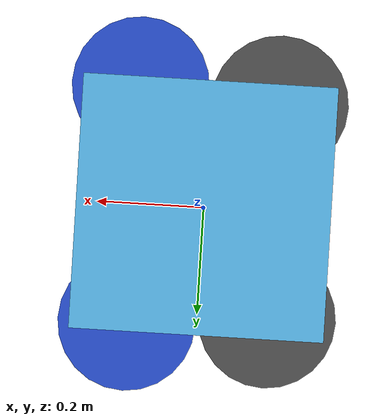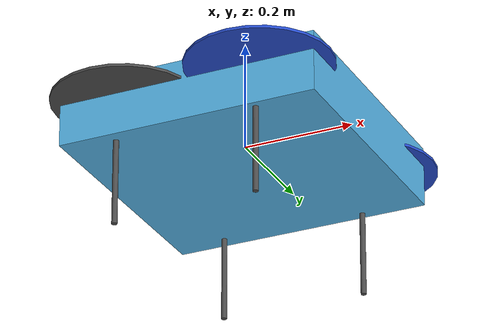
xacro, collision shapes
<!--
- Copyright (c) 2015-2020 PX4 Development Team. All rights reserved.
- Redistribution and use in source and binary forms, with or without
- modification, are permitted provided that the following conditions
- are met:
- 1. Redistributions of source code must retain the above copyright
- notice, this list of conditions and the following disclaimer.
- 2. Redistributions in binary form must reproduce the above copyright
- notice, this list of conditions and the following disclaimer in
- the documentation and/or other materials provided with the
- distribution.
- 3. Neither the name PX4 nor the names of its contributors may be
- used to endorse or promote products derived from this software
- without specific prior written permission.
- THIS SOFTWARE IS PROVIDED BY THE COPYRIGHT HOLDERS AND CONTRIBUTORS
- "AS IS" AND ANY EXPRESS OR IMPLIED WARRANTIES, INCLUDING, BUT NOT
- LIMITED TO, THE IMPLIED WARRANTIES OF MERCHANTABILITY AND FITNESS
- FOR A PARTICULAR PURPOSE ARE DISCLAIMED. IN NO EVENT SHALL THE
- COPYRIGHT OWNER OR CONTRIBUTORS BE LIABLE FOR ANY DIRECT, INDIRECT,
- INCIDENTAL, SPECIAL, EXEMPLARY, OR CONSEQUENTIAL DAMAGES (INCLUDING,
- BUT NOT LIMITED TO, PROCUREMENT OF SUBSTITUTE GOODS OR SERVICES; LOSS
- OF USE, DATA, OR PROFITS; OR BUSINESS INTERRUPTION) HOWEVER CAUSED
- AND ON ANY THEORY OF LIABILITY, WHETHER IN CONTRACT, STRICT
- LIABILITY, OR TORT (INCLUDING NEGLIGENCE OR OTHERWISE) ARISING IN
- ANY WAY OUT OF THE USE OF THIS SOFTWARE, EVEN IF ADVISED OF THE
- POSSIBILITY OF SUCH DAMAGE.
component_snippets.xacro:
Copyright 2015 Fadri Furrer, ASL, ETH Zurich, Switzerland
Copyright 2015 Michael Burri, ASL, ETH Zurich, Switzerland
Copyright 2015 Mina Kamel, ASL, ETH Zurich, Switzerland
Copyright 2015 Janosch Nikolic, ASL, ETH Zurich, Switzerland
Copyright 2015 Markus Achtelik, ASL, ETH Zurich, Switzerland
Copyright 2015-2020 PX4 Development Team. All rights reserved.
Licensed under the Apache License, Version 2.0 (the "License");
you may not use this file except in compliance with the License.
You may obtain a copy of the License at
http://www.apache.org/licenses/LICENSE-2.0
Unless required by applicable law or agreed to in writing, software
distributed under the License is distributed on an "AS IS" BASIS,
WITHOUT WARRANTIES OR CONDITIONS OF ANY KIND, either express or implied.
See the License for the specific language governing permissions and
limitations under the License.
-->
<?xml version="1.0"?>

<robot name="iris" xmlns:xacro="http://ros.org/wiki/xacro">
  <!-- Properties that can be assigned at build time as arguments.
  Is there a reason not to make all properties arguments?
  -->
  <xacro:arg name='name' default='iris' />
  <xacro:arg name='mavlink_addr' default='INADDR_ANY' />
  <xacro:arg name='mavlink_udp_port' default='14560' />
  <xacro:arg name='mavlink_tcp_port' default='4560' />
  <xacro:arg name='serial_enabled' default='false' />
  <xacro:arg name='serial_device' default='/dev/ttyACM0' />
  <xacro:arg name='baudrate' default='921600' />
  <xacro:arg name='qgc_addr' default='INADDR_ANY' />
  <xacro:arg name='qgc_udp_port' default='14550' />
  <xacro:arg name='sdk_addr' default='INADDR_ANY' />
  <xacro:arg name='sdk_udp_port' default='14540' />
  <xacro:arg name='hil_mode' default='false' />
  <xacro:arg name='hil_state_level' default='false' />
  <xacro:arg name='send_vision_estimation' default='false' />
  <xacro:arg name='send_odometry' default='false' />
  <xacro:arg name='enable_lockstep' default='true' />
  <xacro:arg name='use_tcp' default='true' />
  <xacro:arg name='vehicle_is_tailsitter' default='false' />
  <xacro:arg name='visual_material' default='DarkGrey' />
  <xacro:arg name='enable_mavlink_interface' default='true' />
  <xacro:arg name='enable_wind' default='false' />
  <!-- The following causes segfault with multiple vehicles if defaults to true!!! -->
  <xacro:arg name='enable_ground_truth' default='false' />
  <xacro:arg name='enable_logging' default='false' />
  <xacro:arg name='log_file' default='iris' />

  <!-- macros for gazebo plugins, sensors -->
  <xacro:include filename="$(find mobot_urdf)/urdf/component_snippets.xacro" />

  <!-- Instantiate iris "mechanics" -->
  <xacro:include filename="$(find mobot_urdf)/urdf/iris.xacro" />

  <xacro:if value="$(arg enable_wind)">
    <xacro:wind_plugin_macro
        namespace="${namespace}"
        wind_direction="0 0 1"
        wind_force_mean="0.7"
        xyz_offset="1 0 0"
        wind_gust_direction="0 0 0"
        wind_gust_duration="0"
        wind_gust_start="0"
        wind_gust_force_mean="0"
        />
  </xacro:if>

  <!-- Mount a GPS module. -->
  <xacro:gps_macro
    gps_name="gps0"
    pos_x="0.0"
    pos_y="0.0"
    pos_z="0.0"
    gps_noise="true"
    gps_xy_random_walk="2.0"
    gps_z_random_walk="4.0"
    gps_xy_noise_density="2.0e-4"
    gps_z_noise_density="4.0e-4"
    gps_vxy_noise_density="0.2"
    gps_vz_noise_density="0.4"
    namespace=""
    parent_link="base_link">
  </xacro:gps_macro>

  <!-- Instantiate groundtruth plugin. -->
  <xacro:groundtruth_plugin_macro
    namespace="${namespace}"
    >
  </xacro:groundtruth_plugin_macro>

  <!-- Instantiate magnetometer plugin. -->
  <xacro:magnetometer_plugin_macro
    namespace="${namespace}"
    pub_rate="100"
    noise_density="0.0004"
    random_walk="0.0000064"
    bias_correlation_time="600"
    mag_topic="/mag"
    >
  </xacro:magnetometer_plugin_macro>

  <!-- Instantiate barometer plugin. -->
  <xacro:barometer_plugin_macro
    namespace="${namespace}"
    pub_rate="50"
    baro_topic="/baro"
    baro_drift_pa_per_sec="0"
    >
  </xacro:barometer_plugin_macro>

  <xacro:if value="$(arg enable_mavlink_interface)">
  <!-- Instantiate mavlink telemetry interface. -->
  <xacro:mavlink_interface_macro
    namespace="${namespace}"
    imu_sub_topic="/imu"
    mag_sub_topic="/mag"
    baro_sub_topic="/baro"
    mavlink_addr="$(arg mavlink_addr)"
    mavlink_udp_port="$(arg mavlink_udp_port)"
    mavlink_tcp_port="$(arg mavlink_tcp_port)"
    serial_enabled="$(arg serial_enabled)"
    serial_device="$(arg serial_device)"
    baudrate="$(arg baudrate)"
    qgc_addr="$(arg qgc_addr)"
    qgc_udp_port="$(arg qgc_udp_port)"
    sdk_addr="$(arg sdk_addr)"
    sdk_udp_port="$(arg sdk_udp_port)"
    hil_mode="$(arg hil_mode)"
    hil_state_level="$(arg hil_state_level)"
    vehicle_is_tailsitter="$(arg vehicle_is_tailsitter)"
    send_vision_estimation="$(arg send_vision_estimation)"
    send_odometry="$(arg send_odometry)"
    enable_lockstep="$(arg enable_lockstep)"
    use_tcp="$(arg use_tcp)"
    >
  </xacro:mavlink_interface_macro>
  </xacro:if>

  <!-- Mount an ADIS16448 IMU. -->
  <xacro:imu_plugin_macro
    namespace="${namespace}"
    imu_suffix=""
    parent_link="base_link"
    imu_topic="/imu"
    mass_imu_sensor="0.015"
    gyroscope_noise_density="0.00018665"
    gyroscopoe_random_walk="0.000038785"
    gyroscope_bias_correlation_time="1000.0"
    gyroscope_turn_on_bias_sigma="0.0087"
    accelerometer_noise_density="0.00186"
    accelerometer_random_walk="0.006"
    accelerometer_bias_correlation_time="300.0"
    accelerometer_turn_on_bias_sigma="0.1960"
  >
    <inertia ixx="0.00001" ixy="0.0" ixz="0.0" iyy="0.00001" iyz="0.0" izz="0.00001" />
    <origin xyz="0 0 0" rpy="0 0 0" />
  </xacro:imu_plugin_macro>

  <xacro:if value="$(arg enable_ground_truth)">
    <!-- Mount an IMU providing ground truth. -->
    <xacro:imu_plugin_macro
      namespace="${namespace}"
      imu_suffix="gt"
      parent_link="base_link"
      imu_topic="ground_truth/imu"
      mass_imu_sensor="0.00001"
      gyroscope_noise_density="0.0"
      gyroscopoe_random_walk="0.0"
      gyroscope_bias_correlation_time="1000.0"
      gyroscope_turn_on_bias_sigma="0.0"
      accelerometer_noise_density="0.0"
      accelerometer_random_walk="0.0"
      accelerometer_bias_correlation_time="300.0"
      accelerometer_turn_on_bias_sigma="0.0"
    >
      <inertia ixx="0.00001" ixy="0.0" ixz="0.0" iyy="0.00001" iyz="0.0" izz="0.00001" />
      <origin xyz="0 0 0" rpy="0 0 0" />
    </xacro:imu_plugin_macro>

    <!-- Mount a generic odometry sensor providing ground truth. -->
    <xacro:odometry_plugin_macro
      namespace="${namespace}/ground_truth"
      odometry_sensor_suffix="gt"
      parent_link="base_link"
      pose_topic="pose"
      pose_with_covariance_topic="pose_with_covariance"
      position_topic="position"
      transform_topic="transform"
      odometry_topic="odometry"
      parent_frame_id="world"
      mass_odometry_sensor="0.00001"
      measurement_divisor="1"
      measurement_delay="0"
      unknown_delay="0.0"
      noise_normal_position="0 0 0"
      noise_normal_quaternion="0 0 0"
      noise_normal_linear_velocity="0 0 0"
      noise_normal_angular_velocity="0 0 0"
      noise_uniform_position="0 0 0"
      noise_uniform_quaternion="0 0 0"
      noise_uniform_linear_velocity="0 0 0"
      noise_uniform_angular_velocity="0 0 0"
      enable_odometry_map="false"
      odometry_map=""
      image_scale=""
    >
      <inertia ixx="0.00001" ixy="0.0" ixz="0.0" iyy="0.00001" iyz="0.0" izz="0.00001" /> <!-- [kg.m^2] [kg.m^2] [kg.m^2] [kg.m^2] [kg.m^2] [kg.m^2] -->
      <origin xyz="0.0 0.0 0.0" rpy="0.0 0.0 0.0" />
    </xacro:odometry_plugin_macro>
  </xacro:if>

  <xacro:if value="$(arg enable_logging)">
    <!-- Instantiate a logger -->
    <xacro:bag_plugin_macro
      namespace="${namespace}"
      bag_file="$(arg log_file)"
      rotor_velocity_slowdown_sim="${rotor_velocity_slowdown_sim}"
    >
    </xacro:bag_plugin_macro>
  </xacro:if>

</robot>

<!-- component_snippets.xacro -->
<robot xmlns:xacro="http://ros.org/wiki/xacro">
  <!-- Macro to a add a GPS sensor. -->
  <xacro:macro name="gps_macro"
    params="gps_name pos_x pos_y pos_z namespace gps_noise gps_xy_random_walk
            gps_z_random_walk gps_xy_noise_density gps_z_noise_density
            gps_vxy_noise_density gps_vz_noise_density parent_link">
    <gazebo>
      <model name="${gps_name}">
        <link name="link">
          <pose>${pos_x} ${pos_y} ${pos_z} 0 0 0</pose>
          <inertial>
            <pose>0 0 0 0 0 0</pose>
            <mass>0.01</mass>
            <inertia>
              <ixx>2.1733e-6</ixx>
              <ixy>0</ixy>
              <ixz>0</ixz>
              <iyy>2.1733e-6</iyy>
              <iyz>0</iyz>
              <izz>1.8e-7</izz>
            </inertia>
          </inertial>
          <visual name="visual">
            <geometry>
              <cylinder>
                <radius>0.01</radius>
                <length>0.002</length>
              </cylinder>
            </geometry>
            <material>
              <script>
                <name>Gazebo/Black</name>
              </script>
            </material>
          </visual>
          <sensor name="gps" type="gps">
            <pose>0 0 0 0 0 0</pose>
            <plugin name="gps_plugin" filename="libgazebo_gps_plugin.so">
              <robotNamespace>${namespace}</robotNamespace>
              <gpsNoise>${gps_noise}</gpsNoise>
              <gpsXYRandomWalk>${gps_xy_random_walk}</gpsXYRandomWalk>
              <gpsZRandomWalk>${gps_z_random_walk}</gpsZRandomWalk>
              <gpsXYNoiseDensity>${gps_xy_noise_density}</gpsXYNoiseDensity>
              <gpsZNoiseDensity>${gps_z_noise_density}</gpsZNoiseDensity>
              <gpsVXYNoiseDensity>${gps_vxy_noise_density}</gpsVXYNoiseDensity>
              <gpsVZNoiseDensity>${gps_vz_noise_density}</gpsVZNoiseDensity>
            </plugin>
          </sensor>
        </link>
      </model>
      <joint name="${gps_name}_joint" type="fixed">
        <parent>${parent_link}</parent>
        <child>${gps_name}::link</child>
      </joint>
    </gazebo>
  </xacro:macro>

  <!-- Macro to add logging to a bag file. -->
  <xacro:macro name="bag_plugin_macro"
    params="namespace bag_file rotor_velocity_slowdown_sim">
    <gazebo>
      <plugin filename="librotors_gazebo_bag_plugin.so" name="rosbag">
        <robotNamespace>${namespace}</robotNamespace>
        <bagFileName>${bag_file}</bagFileName>
        <linkName>base_link</linkName>
        <frameId>base_link</frameId>
        <commandAttitudeThrustSubTopic>command/attitude</commandAttitudeThrustSubTopic>
        <commandAttitudeThrustPubTopic>command/attitude</commandAttitudeThrustPubTopic>
        <rotorVelocitySlowdownSim>${rotor_velocity_slowdown_sim}</rotorVelocitySlowdownSim>
      </plugin>
    </gazebo>
  </xacro:macro>

  <!-- Macro to add a camera. -->
  <xacro:macro name="camera_macro"
    params="namespace parent_link camera_suffix frame_rate
      horizontal_fov image_width image_height image_format min_distance
      max_distance noise_mean noise_stddev enable_visual *cylinder *origin">
    <link name="${namespace}/camera_${camera_suffix}_link">
      <collision>
        <origin xyz="0 0 0" rpy="0 0 0" />
        <geometry>
          <xacro:insert_block name="cylinder" />
        </geometry>
      </collision>
      <xacro:if value="${enable_visual}">
        <visual>
          <origin xyz="0 0 0" rpy="0 1.57079632679 0" />
          <geometry>
            <xacro:insert_block name="cylinder" />
          </geometry>
          <material name="red" />
        </visual>
      </xacro:if>
      <inertial>
        <mass value="1e-5" />
        <origin xyz="0 0 0" rpy="0 0 0" />
        <inertia ixx="1e-6" ixy="0" ixz="0" iyy="1e-6" iyz="0" izz="1e-6" />
      </inertial>
    </link>
    <joint name="${namespace}/camera_${camera_suffix}_joint" type="fixed">
      <xacro:insert_block name="origin" />
      <parent link="${parent_link}" />
      <child link="${namespace}/camera_${camera_suffix}_link" />
    </joint>
    <gazebo reference="${namespace}/camera_${camera_suffix}_link">
      <sensor type="camera" name="${namespace}_camera_${camera_suffix}">
        <update_rate>${frame_rate}</update_rate>
        <camera name="head">
          <horizontal_fov>${horizontal_fov}</horizontal_fov>
          <image>
            <width>${image_width}</width>
            <height>${image_height}</height>
            <format>${image_format}</format>
          </image>
          <clip>
            <near>${min_distance}</near>
            <far>${max_distance}</far>
          </clip>
          <noise>
            <type>gaussian</type>
            <!-- Noise is sampled independently per pixel on each frame.
                 That pixel's noise value is added to each of its color
                 channels, which at that point lie in the range [0,1]. -->
            <mean>${noise_mean}</mean>
            <stddev>${noise_stddev}</stddev>
          </noise>
        </camera>
        <plugin name="${namespace}_camera_${camera_suffix}_controller" filename="libgazebo_ros_camera.so">
          <robotNamespace>${namespace}</robotNamespace>
          <alwaysOn>true</alwaysOn>
          <updateRate>${frame_rate}</updateRate>
          <cameraName>camera_${camera_suffix}</cameraName>
          <imageTopicName>image_raw</imageTopicName>
          <cameraInfoTopicName>camera_info</cameraInfoTopicName>
          <frameName>camera_${camera_suffix}_link</frameName>
          <hackBaseline>0.0</hackBaseline>
          <distortionK1>0.0</distortionK1>
          <distortionK2>0.0</distortionK2>
          <distortionK3>0.0</distortionK3>
          <distortionT1>0.0</distortionT1>
          <distortionT2>0.0</distortionT2>
        </plugin>
      </sensor>
    </gazebo>
  </xacro:macro>

  <!-- Macro to add the airspeed sensor_plugin. -->
  <xacro:macro name="airspeed_plugin_macro" params="namespace parent_link">
    <link name="${namespace}/airspeed_link">
      <inertial>
        <inertia ixx="1e-05" ixy="0.0" iyy="1e-05" ixz="0.0" iyz="0.0" izz="1e-05" />
        <mass value="0.015" />  <!-- [kg] -->
        <origin xyz="0 0 0" rpy="0 0 0" />
      </inertial>
    </link>
    <!-- IMU joint -->
    <joint name="${namespace}/airspeed_joint" type="revolute">
      <origin xyz="0 0 0" rpy="0 0 0" />
      <parent link="${parent_link}" />
      <child link="${namespace}/airspeed_link" />
      <limit upper="0" lower="0" effort="0" velocity="0" />
    </joint>

    <gazebo>
      <plugin name='airspeed_plugin' filename='libgazebo_airspeed_plugin.so'>
        <robotNamespace/>
        <linkName>${namespace}/airspeed_link</linkName>
      </plugin>
    </gazebo>
  </xacro:macro>

  <!-- Macro to add the controller interface. -->
  <xacro:macro name="controller_plugin_macro" params="namespace imu_sub_topic">
    <gazebo>
      <plugin name="controller_interface" filename="libgazebo_controller_interface.so">
        <robotNamespace>${namespace}</robotNamespace>
        <commandAttitudeThrustSubTopic>/command/attitude</commandAttitudeThrustSubTopic>
        <commandRateThrustSubTopic>/command/rate</commandRateThrustSubTopic>
        <commandMotorSpeedSubTopic>/command/motor_speed</commandMotorSpeedSubTopic>
        <imuSubTopic>/${imu_sub_topic}</imuSubTopic>
        <motorSpeedCommandPubTopic>/gazebo/command/motor_speed</motorSpeedCommandPubTopic>
      </plugin>
    </gazebo>
  </xacro:macro>

  <!-- Macro to add the groundtruth_plugin. -->
  <xacro:macro name="groundtruth_plugin_macro" params="namespace">
    <gazebo>
      <plugin name='groundtruth_plugin' filename='libgazebo_groundtruth_plugin.so'>
        <robotNamespace>${namespace}</robotNamespace>
      </plugin>
    </gazebo>
  </xacro:macro>

  <!-- Macro to add the magnetometer_plugin. -->
  <xacro:macro name="magnetometer_plugin_macro" params="namespace pub_rate noise_density random_walk bias_correlation_time mag_topic">
    <gazebo>
      <plugin name="magnetometer_plugin" filename="libgazebo_magnetometer_plugin.so">
        <robotNamespace>${namespace}</robotNamespace>
        <pubRate>${pub_rate}</pubRate>
        <noiseDensity>${noise_density}</noiseDensity>
        <randomWalk>${random_walk}</randomWalk>
        <biasCorrelationTime>${bias_correlation_time}</biasCorrelationTime>
        <magTopic>${mag_topic}</magTopic>
      </plugin>
    </gazebo>
  </xacro:macro>

  <!-- Macro to add the barometer_plugin. -->
  <xacro:macro name="barometer_plugin_macro" params="namespace pub_rate baro_topic baro_drift_pa_per_sec">
    <gazebo>
      <plugin name="barometer_plugin" filename="libgazebo_barometer_plugin.so">
        <robotNamespace>${namespace}</robotNamespace>
        <pubRate>${pub_rate}</pubRate>
        <baroTopic>${baro_topic}</baroTopic>
        <baroDriftPaPerSec>${baro_drift_pa_per_sec}</baroDriftPaPerSec>
      </plugin>
    </gazebo>
  </xacro:macro>

  <!-- Macro to add the mavlink interface. -->
  <xacro:macro name="mavlink_interface_macro" params="namespace imu_sub_topic mag_sub_topic baro_sub_topic mavlink_addr mavlink_udp_port mavlink_tcp_port serial_enabled serial_device baudrate qgc_addr qgc_udp_port sdk_addr sdk_udp_port hil_mode hil_state_level vehicle_is_tailsitter send_vision_estimation send_odometry enable_lockstep use_tcp">
    <gazebo>
      <plugin name="mavlink_interface" filename="libgazebo_mavlink_interface.so">
        <robotNamespace>${namespace}</robotNamespace>
        <imuSubTopic>${imu_sub_topic}</imuSubTopic>
        <magSubTopic>${mag_sub_topic}</magSubTopic>
        <baroSubTopic>${baro_sub_topic}</baroSubTopic>
        <mavlink_addr>$(arg mavlink_addr)</mavlink_addr>
        <mavlink_udp_port>$(arg mavlink_udp_port)</mavlink_udp_port>
        <mavlink_tcp_port>$(arg mavlink_tcp_port)</mavlink_tcp_port>
        <serialEnabled>$(arg serial_enabled)</serialEnabled>
        <serialDevice>$(arg serial_device)</serialDevice>
        <baudRate>$(arg baudrate)</baudRate>
        <qgc_addr>$(arg qgc_addr)</qgc_addr>
        <qgc_udp_port>$(arg qgc_udp_port)</qgc_udp_port>
        <sdk_addr>$(arg sdk_addr)</sdk_addr>
        <sdk_udp_port>$(arg sdk_udp_port)</sdk_udp_port>
        <hil_mode>$(arg hil_mode)</hil_mode>
        <hil_state_level>$(arg hil_state_level)</hil_state_level>
        <vehicle_is_tailsitter>$(arg vehicle_is_tailsitter)</vehicle_is_tailsitter>
        <send_vision_estimation>$(arg send_vision_estimation)</send_vision_estimation>
        <send_odometry>$(arg send_odometry)</send_odometry>
        <enable_lockstep>$(arg enable_lockstep)</enable_lockstep>
        <use_tcp>$(arg use_tcp)</use_tcp>
        <motorSpeedCommandPubTopic>/gazebo/command/motor_speed</motorSpeedCommandPubTopic>
        <control_channels>
          <channel name="rotor1">
            <input_index>0</input_index>
            <input_offset>0</input_offset>
            <input_scaling>1000</input_scaling>
            <zero_position_disarmed>0</zero_position_disarmed>
            <zero_position_armed>100</zero_position_armed>
            <joint_control_type>velocity</joint_control_type>
          </channel>
          <channel name="rotor2">
            <input_index>1</input_index>
            <input_offset>0</input_offset>
            <input_scaling>1000</input_scaling>
            <zero_position_disarmed>0</zero_position_disarmed>
            <zero_position_armed>100</zero_position_armed>
            <joint_control_type>velocity</joint_control_type>
          </channel>
          <channel name="rotor3">
            <input_index>2</input_index>
            <input_offset>0</input_offset>
            <input_scaling>1000</input_scaling>
            <zero_position_disarmed>0</zero_position_disarmed>
            <zero_position_armed>100</zero_position_armed>
            <joint_control_type>velocity</joint_control_type>
          </channel>
          <channel name="rotor4">
            <input_index>3</input_index>
            <input_offset>0</input_offset>
            <input_scaling>1000</input_scaling>
            <zero_position_disarmed>0</zero_position_disarmed>
            <zero_position_armed>100</zero_position_armed>
            <joint_control_type>velocity</joint_control_type>
          </channel>
          <channel name="rotor5">
            <input_index>4</input_index>
            <input_offset>1</input_offset>
            <input_scaling>324.6</input_scaling>
            <zero_position_disarmed>0</zero_position_disarmed>
            <zero_position_armed>0</zero_position_armed>
            <joint_control_type>velocity</joint_control_type>
            <joint_control_pid>
              <p>0.1</p>
              <i>0</i>
              <d>0</d>
              <iMax>0.0</iMax>
              <iMin>0.0</iMin>
              <cmdMax>2</cmdMax>
              <cmdMin>-2</cmdMin>
            </joint_control_pid>
            <joint_name>zephyr_delta_wing::propeller_joint</joint_name>
          </channel>
          <channel name="rotor6">
            <input_index>5</input_index>
            <input_offset>0</input_offset>
            <!-- joint limits [-0.524, 0.524] -->
            <input_scaling>0.524</input_scaling>
            <zero_position_disarmed>0</zero_position_disarmed>
            <zero_position_armed>0</zero_position_armed>
            <joint_control_type>position</joint_control_type>
            <joint_name>zephyr_delta_wing::flap_left_joint</joint_name>
            <joint_control_pid>
              <p>10.0</p>
              <i>0</i>
              <d>0</d>
              <iMax>0</iMax>
              <iMin>0</iMin>
              <cmdMax>20</cmdMax>
              <cmdMin>-20</cmdMin>
            </joint_control_pid>
          </channel>
          <channel name="rotor7">
            <input_index>6</input_index>
            <input_offset>0</input_offset>
            <!-- joint limits [-0.524, 0.524] -->
            <input_scaling>0.524</input_scaling>
            <zero_position_disarmed>0</zero_position_disarmed>
            <zero_position_armed>0</zero_position_armed>
            <joint_control_type>position</joint_control_type>
            <joint_name>zephyr_delta_wing::flap_right_joint</joint_name>
            <joint_control_pid>
              <p>10.0</p>
              <i>0</i>
              <d>0</d>
              <iMax>0</iMax>
              <iMin>0</iMin>
              <cmdMax>20</cmdMax>
              <cmdMin>-20</cmdMin>
            </joint_control_pid>
          </channel>
          <channel name="rotor8">
            <input_index>7</input_index>
            <input_offset>0</input_offset>
            <input_scaling>0.524</input_scaling>
            <zero_position_disarmed>0</zero_position_disarmed>
            <zero_position_armed>0</zero_position_armed>
            <joint_control_type>position</joint_control_type>
          </channel>
        </control_channels>
      </plugin>
    </gazebo>
  </xacro:macro>

  <!-- Macro to add the mavlink interface for a fixed-wing model. -->
  <xacro:macro name="mavlink_interface_macro_fw" params="namespace imu_sub_topic mag_sub_topic baro_sub_topic mavlink_addr mavlink_udp_port mavlink_tcp_port serial_enabled serial_device baudrate qgc_addr qgc_udp_port sdk_addr sdk_udp_port hil_mode hil_state_level vehicle_is_tailsitter send_vision_estimation send_odometry enable_lockstep use_tcp">
    <gazebo>
      <plugin name="mavlink_interface" filename="libgazebo_mavlink_interface.so">
        <robotNamespace>${namespace}</robotNamespace>
        <imuSubTopic>${imu_sub_topic}</imuSubTopic>
        <magSubTopic>${mag_sub_topic}</magSubTopic>
        <baroSubTopic>${baro_sub_topic}</baroSubTopic>
        <mavlink_addr>$(arg mavlink_addr)</mavlink_addr>
        <mavlink_udp_port>$(arg mavlink_udp_port)</mavlink_udp_port>
        <mavlink_tcp_port>$(arg mavlink_tcp_port)</mavlink_tcp_port>
        <serialEnabled>$(arg serial_enabled)</serialEnabled>
        <serialDevice>$(arg serial_device)</serialDevice>
        <baudRate>$(arg baudrate)</baudRate>
        <qgc_addr>$(arg qgc_addr)</qgc_addr>
        <qgc_udp_port>$(arg qgc_udp_port)</qgc_udp_port>
        <sdk_addr>$(arg sdk_addr)</sdk_addr>
        <sdk_udp_port>$(arg sdk_udp_port)</sdk_udp_port>
        <hil_mode>$(arg hil_mode)</hil_mode>
        <hil_state_level>$(arg hil_state_level)</hil_state_level>
        <vehicle_is_tailsitter>$(arg vehicle_is_tailsitter)</vehicle_is_tailsitter>
        <send_vision_estimation>$(arg send_vision_estimation)</send_vision_estimation>
        <send_odometry>$(arg send_odometry)</send_odometry>
        <enable_lockstep>$(arg enable_lockstep)</enable_lockstep>
        <use_tcp>$(arg use_tcp)</use_tcp>
        <motorSpeedCommandPubTopic>/gazebo/command/motor_speed</motorSpeedCommandPubTopic>
        <control_channels>
          <channel name="rudder">
            <input_index>2</input_index>
            <input_offset>0</input_offset>
            <input_scaling>1</input_scaling>
            <zero_position_disarmed>0</zero_position_disarmed>
            <zero_position_armed>0</zero_position_armed>
            <joint_control_type>position_kinematic</joint_control_type>
            <joint_name>rudder_joint</joint_name>
          </channel>
          <channel name="rotor_4">
            <input_index>4</input_index>
            <input_offset>0</input_offset>
            <input_scaling>3500</input_scaling>
            <zero_position_disarmed>0</zero_position_disarmed>
            <zero_position_armed>0</zero_position_armed>
            <joint_control_type>velocity</joint_control_type>
            <joint_name>rotor_4_joint</joint_name>
          </channel>
          <channel name="left_aileron">
            <input_index>5</input_index>
            <input_offset>0</input_offset>
            <input_scaling>1</input_scaling>
            <zero_position_disarmed>0</zero_position_disarmed>
            <zero_position_armed>0</zero_position_armed>
            <joint_control_type>position_kinematic</joint_control_type>
            <joint_name>left_elevon_joint</joint_name>
          </channel>
          <channel name="right_aileron">
            <input_index>6</input_index>
            <input_offset>0</input_offset>
            <input_scaling>1</input_scaling>
            <zero_position_disarmed>0</zero_position_disarmed>
            <zero_position_armed>0</zero_position_armed>
            <joint_control_type>position_kinematic</joint_control_type>
            <joint_name>right_elevon_joint</joint_name>
          </channel>
          <channel name="elevator">
            <input_index>7</input_index>
            <input_offset>0</input_offset>
            <input_scaling>1</input_scaling>
            <zero_position_disarmed>0</zero_position_disarmed>
            <zero_position_armed>0</zero_position_armed>
            <joint_control_type>position_kinematic</joint_control_type>
            <joint_name>elevator_joint</joint_name>
          </channel>
        </control_channels>
      </plugin>
    </gazebo>
  </xacro:macro>

  <!-- Macro to add the mavlink interface for a fixed-wing model. -->
  <xacro:macro name="mavlink_interface_macro_vtol" params="namespace imu_sub_topic mag_sub_topic baro_sub_topic mavlink_addr mavlink_udp_port mavlink_tcp_port serial_enabled serial_device baudrate qgc_addr qgc_udp_port sdk_addr sdk_udp_port hil_mode hil_state_level vehicle_is_tailsitter send_vision_estimation send_odometry enable_lockstep use_tcp">
    <gazebo>
      <plugin name='mavlink_interface' filename='libgazebo_mavlink_interface.so'>
        <robotNamespace>${namespace}</robotNamespace>
        <imuSubTopic>${imu_sub_topic}</imuSubTopic>
        <magSubTopic>${mag_sub_topic}</magSubTopic>
        <baroSubTopic>${baro_sub_topic}</baroSubTopic>
        <mavlink_addr>$(arg mavlink_addr)</mavlink_addr>
        <mavlink_udp_port>$(arg mavlink_udp_port)</mavlink_udp_port>
        <mavlink_tcp_port>$(arg mavlink_tcp_port)</mavlink_tcp_port>
        <serialEnabled>$(arg serial_enabled)</serialEnabled>
        <serialDevice>$(arg serial_device)</serialDevice>
        <baudRate>$(arg baudrate)</baudRate>
        <qgc_addr>$(arg qgc_addr)</qgc_addr>
        <qgc_udp_port>$(arg qgc_udp_port)</qgc_udp_port>
        <sdk_addr>$(arg sdk_addr)</sdk_addr>
        <sdk_udp_port>$(arg sdk_udp_port)</sdk_udp_port>
        <hil_mode>$(arg hil_mode)</hil_mode>
        <hil_state_level>$(arg hil_state_level)</hil_state_level>
        <vehicle_is_tailsitter>$(arg vehicle_is_tailsitter)</vehicle_is_tailsitter>
        <send_vision_estimation>$(arg send_vision_estimation)</send_vision_estimation>
        <send_odometry>$(arg send_odometry)</send_odometry>
        <enable_lockstep>$(arg enable_lockstep)</enable_lockstep>
        <use_tcp>$(arg use_tcp)</use_tcp>
        <motorSpeedCommandPubTopic>/gazebo/command/motor_speed</motorSpeedCommandPubTopic>
        <control_channels>
          <channel name="rotor0">
            <input_index>0</input_index>
            <input_offset>0</input_offset>
            <input_scaling>1500</input_scaling>
            <zero_position_disarmed>0</zero_position_disarmed>
            <zero_position_armed>0</zero_position_armed>
            <joint_control_type>velocity</joint_control_type>
            <joint_name>rotor_0_joint</joint_name>
          </channel>
          <channel name="rotor1">
            <input_index>1</input_index>
            <input_offset>0</input_offset>
            <input_scaling>1500</input_scaling>
            <zero_position_disarmed>0</zero_position_disarmed>
            <zero_position_armed>0</zero_position_armed>
            <joint_control_type>velocity</joint_control_type>
            <joint_name>rotor_1_joint</joint_name>
          </channel>
          <channel name="rotor2">
            <input_index>2</input_index>
            <input_offset>0</input_offset>
            <input_scaling>1500</input_scaling>
            <zero_position_disarmed>0</zero_position_disarmed>
            <zero_position_armed>0</zero_position_armed>
            <joint_control_type>velocity</joint_control_type>
            <joint_name>rotor_2_joint</joint_name>
          </channel>
          <channel name="rotor3">
            <input_index>3</input_index>
            <input_offset>0</input_offset>
            <input_scaling>1500</input_scaling>
            <zero_position_disarmed>0</zero_position_disarmed>
            <zero_position_armed>0</zero_position_armed>
            <joint_control_type>velocity</joint_control_type>
            <joint_name>rotor_3_joint</joint_name>
          </channel>
          <channel name="rotor4">
            <input_index>4</input_index>
            <input_offset>0</input_offset>
            <input_scaling>5500</input_scaling>
            <zero_position_disarmed>0</zero_position_disarmed>
            <zero_position_armed>0</zero_position_armed>
            <joint_control_type>velocity</joint_control_type>
            <joint_name>rotor_puller_joint</joint_name>
          </channel>
          <channel name="left_elevon">
            <input_index>5</input_index>
            <input_offset>0</input_offset>
            <input_scaling>1</input_scaling>
            <zero_position_disarmed>0</zero_position_disarmed>
            <zero_position_armed>0</zero_position_armed>
            <joint_control_type>position_kinematic</joint_control_type>
            <joint_name>left_elevon_joint</joint_name>
          </channel>
          <channel name="right_elevon">
            <input_index>6</input_index>
            <input_offset>0</input_offset>
            <input_scaling>1</input_scaling>
            <zero_position_disarmed>0</zero_position_disarmed>
            <zero_position_armed>0</zero_position_armed>
            <joint_control_type>position_kinematic</joint_control_type>
            <joint_name>right_elevon_joint</joint_name>
          </channel>
          <channel name="elevator">
            <input_index>7</input_index>
            <input_offset>0</input_offset>
            <input_scaling>1</input_scaling>
            <zero_position_disarmed>0</zero_position_disarmed>
            <zero_position_armed>0</zero_position_armed>
            <joint_control_type>position_kinematic</joint_control_type>
            <joint_name>elevator_joint</joint_name>
          </channel>
        </control_channels>
        <left_elevon_joint>
          left_elevon_joint
        </left_elevon_joint>
        <right_elevon_joint>
          right_elevon_joint
        </right_elevon_joint>
        <elevator_joint>
          elevator_joint
        </elevator_joint>
      </plugin>
    </gazebo>
  </xacro:macro>

  <!-- Macro to add an IMU. -->
  <xacro:macro name="imu_plugin_macro"
    params="namespace imu_suffix parent_link imu_topic
      mass_imu_sensor gyroscope_noise_density gyroscopoe_random_walk
      gyroscope_bias_correlation_time gyroscope_turn_on_bias_sigma
      accelerometer_noise_density accelerometer_random_walk
      accelerometer_bias_correlation_time accelerometer_turn_on_bias_sigma
      *inertia *origin">
    <!-- IMU link -->
    <link name="${namespace}/imu${imu_suffix}_link">
      <inertial>
        <xacro:insert_block name="inertia" />
        <mass value="${mass_imu_sensor}" />  <!-- [kg] -->
        <origin xyz="0 0 0" rpy="0 0 0" />
      </inertial>
    </link>
    <!-- IMU joint -->
    <joint name="${namespace}/imu${imu_suffix}_joint" type="revolute">
      <xacro:insert_block name="origin" />
      <parent link="${parent_link}" />
      <child link="${namespace}/imu${imu_suffix}_link" />
      <limit upper="0" lower="0" effort="0" velocity="0" />
    </joint>
    <gazebo>
      <plugin filename="libgazebo_imu_plugin.so" name="rotors_gazebo_imu${imu_suffix}_plugin">
      <!-- A good description of the IMU parameters can be found in the kalibr documentation:
           https://github.com/ethz-asl/kalibr/wiki/IMU-Noise-Model-and-Intrinsics -->
        <robotNamespace>${namespace}</robotNamespace> <!-- (string, required): ros namespace in which the messages are published -->
        <linkName>${namespace}/imu${imu_suffix}_link</linkName> <!-- (string, required): name of the body which holds the IMU sensor -->
        <imuTopic>${imu_topic}</imuTopic> <!-- (string): name of the sensor output topic and prefix of service names (defaults to imu) -->
        <gyroscopeNoiseDensity>${gyroscope_noise_density}</gyroscopeNoiseDensity> <!-- Gyroscope noise density (two-sided spectrum) [rad/s/sqrt(Hz)] -->
        <gyroscopeRandomWalk>${gyroscopoe_random_walk}</gyroscopeRandomWalk> <!-- Gyroscope bias random walk [rad/s/s/sqrt(Hz)] -->
        <gyroscopeBiasCorrelationTime>${gyroscope_bias_correlation_time}</gyroscopeBiasCorrelationTime> <!-- Gyroscope bias correlation time constant [s] -->
        <gyroscopeTurnOnBiasSigma>${gyroscope_turn_on_bias_sigma}</gyroscopeTurnOnBiasSigma> <!-- Gyroscope turn on bias standard deviation [rad/s] -->
        <accelerometerNoiseDensity>${accelerometer_noise_density}</accelerometerNoiseDensity> <!-- Accelerometer noise density (two-sided spectrum) [m/s^2/sqrt(Hz)] -->
        <accelerometerRandomWalk>${accelerometer_random_walk}</accelerometerRandomWalk> <!-- Accelerometer bias random walk. [m/s^2/s/sqrt(Hz)] -->
        <accelerometerBiasCorrelationTime>${accelerometer_bias_correlation_time}</accelerometerBiasCorrelationTime> <!-- Accelerometer bias correlation time constant [s] -->
        <accelerometerTurnOnBiasSigma>${accelerometer_turn_on_bias_sigma}</accelerometerTurnOnBiasSigma> <!-- Accelerometer turn on bias standard deviation [m/s^2] -->
      </plugin>
    </gazebo>
  </xacro:macro>

<!-- Macro to add a generic odometry sensor. -->
  <xacro:macro name="odometry_plugin_macro"
    params="
      namespace odometry_sensor_suffix parent_link pose_topic pose_with_covariance_topic
      position_topic transform_topic odometry_topic parent_frame_id
      mass_odometry_sensor measurement_divisor measurement_delay unknown_delay
      noise_normal_position noise_normal_quaternion noise_normal_linear_velocity
      noise_normal_angular_velocity noise_uniform_position
      noise_uniform_quaternion noise_uniform_linear_velocity
      noise_uniform_angular_velocity enable_odometry_map odometry_map
      image_scale *inertia *origin">
    <!-- odometry link -->
    <link name="${namespace}/odometry_sensor${odometry_sensor_suffix}_link">
      <inertial>
        <xacro:insert_block name="inertia" />
        <mass value="${mass_odometry_sensor}" />  <!-- [kg] -->
      </inertial>
    </link>
    <!-- odometry joint -->
    <joint name="${namespace}/odometry_sensor${odometry_sensor_suffix}_joint" type="revolute">
      <parent link="${parent_link}" />
      <xacro:insert_block name="origin" />
      <child link="${namespace}/odometry_sensor${odometry_sensor_suffix}_link" />
      <limit upper="0" lower="0" effort="0" velocity="0" />
    </joint>
    <gazebo>
      <plugin filename="librotors_gazebo_odometry_plugin.so" name="odometry_sensor${odometry_sensor_suffix}">
        <linkName>${namespace}/odometry_sensor${odometry_sensor_suffix}_link</linkName>
        <robotNamespace>${namespace}</robotNamespace>
        <poseTopic>${pose_topic}</poseTopic>
        <poseWithCovarianceTopic>${pose_with_covariance_topic}</poseWithCovarianceTopic>
        <positionTopic>${position_topic}</positionTopic>
        <transformTopic>${transform_topic}</transformTopic>
        <odometryTopic>${odometry_topic}</odometryTopic>
        <parentFrameId>${parent_frame_id}</parentFrameId>  <!-- Use the scoped link name here. e.g. Model::link. -->
        <measurementDivisor>${measurement_divisor}</measurementDivisor> <!-- only every (seq % measurementDivisor) == 0 measurement is published [int] -->
        <measurementDelay>${measurement_delay}</measurementDelay> <!-- time that measurement gets held back before it's published in [simulation cycles (int)] -->
        <unknownDelay>${unknown_delay}</unknownDelay> <!-- additional delay, that just gets added to the timestamp [s] -->
        <noiseNormalPosition>${noise_normal_position}</noiseNormalPosition> <!-- standard deviation of additive white gaussian noise [m] -->
        <noiseNormalQuaternion>${noise_normal_quaternion}</noiseNormalQuaternion> <!-- standard deviation white gaussian noise [rad]: q_m = q*quaternionFromSmallAngleApproximation(noiseNormalQ) -->
        <noiseNormalLinearVelocity>${noise_normal_linear_velocity}</noiseNormalLinearVelocity> <!-- standard deviation of additive white gaussian noise [m/s] -->
        <noiseNormalAngularVelocity>${noise_normal_angular_velocity}</noiseNormalAngularVelocity> <!-- standard deviation of additive white gaussian noise [rad/s] -->
        <noiseUniformPosition>${noise_uniform_position}</noiseUniformPosition> <!-- symmetric bounds of uniform noise [m] -->
        <noiseUniformQuaternion>${noise_uniform_quaternion}</noiseUniformQuaternion> <!-- symmetric bounds of uniform noise [rad], computation see above -->
        <noiseUniformLinearVelocity>${noise_uniform_linear_velocity}</noiseUniformLinearVelocity>  <!-- symmetric bounds of uniform noise [m/s] -->
        <noiseUniformAngularVelocity>${noise_uniform_angular_velocity}</noiseUniformAngularVelocity>  <!-- symmetric bounds of uniform noise [rad/s] -->
        <xacro:if value="${enable_odometry_map}">
          <covarianceImage>package://rotors_gazebo/resource/${odometry_map}</covarianceImage>
          <covarianceImageScale>${image_scale}</covarianceImageScale>
        </xacro:if>
      </plugin>
    </gazebo>
  </xacro:macro>

  <!-- Macro to add the wind plugin. -->
  <xacro:macro name="wind_plugin_macro"
    params="namespace xyz_offset wind_direction wind_force_mean
      wind_gust_direction wind_gust_duration wind_gust_start
      wind_gust_force_mean">
    <gazebo>
      <plugin filename="libgazebo_wind_plugin.so" name="wind_plugin">
        <frameId>base_link</frameId>
        <linkName>base_link</linkName>
        <robotNamespace>${namespace}</robotNamespace>
        <xyzOffset>${xyz_offset}</xyzOffset>
        <windDirectionMean>${wind_direction}</windDirectionMean>
        <windVelocityMean>${wind_force_mean}</windVelocityMean>
        <windGustDirection>${wind_gust_direction}</windGustDirection>
        <windGustDuration>${wind_gust_duration}</windGustDuration>
        <windGustStart>${wind_gust_start}</windGustStart>
        <windGustVelocityMean>${wind_gust_force_mean}</windGustVelocityMean>
      </plugin>
    </gazebo>
  </xacro:macro>

  <!-- VI sensor macros -->
  <!-- Macro to add a VI-sensor camera. -->
  <xacro:macro name="vi_sensor_camera_macro"
    params="namespace parent_link camera_suffix frame_rate *origin">
    <xacro:camera_macro
      namespace="${namespace}"
      parent_link="${parent_link}"
      camera_suffix="${camera_suffix}"
      frame_rate="${frame_rate}"
      horizontal_fov="1.3962634"
      image_width="752"
      image_height="480"
      image_format="L8"
      min_distance="0.02"
      max_distance="30"
      noise_mean="0.0"
      noise_stddev="0.007"
      enable_visual="false">
      <cylinder length="0.01" radius="0.007" />
      <xacro:insert_block name="origin" />
    </xacro:camera_macro>
  </xacro:macro>

  <!-- Macro to add a depth camera on the VI-sensor. -->
  <xacro:macro name="vi_sensor_depth_macro"
    params="namespace parent_link camera_suffix frame_rate *origin">
    <link name="${namespace}/camera_${camera_suffix}_link">
      <collision>
        <origin xyz="0 0 0" rpy="0 0 0" />
        <geometry>
          <cylinder length="0.01" radius="0.007" />
        </geometry>
      </collision>
      <inertial>
        <mass value="1e-5" />
        <origin xyz="0 0 0" rpy="0 0 0" />
        <inertia ixx="1e-6" ixy="0" ixz="0" iyy="1e-6" iyz="0" izz="1e-6" />
      </inertial>
    </link>
    <joint name="${namespace}/camera_${camera_suffix}_joint" type="fixed">
      <xacro:insert_block name="origin" />
      <parent link="${parent_link}" />
      <child link="${namespace}/camera_${camera_suffix}_link" />
      <limit upper="0" lower="0" effort="0" velocity="0" />
    </joint>
    <!-- Optical center of camera -->
    <link name="${namespace}/camera_${camera_suffix}_optical_center_link" />
    <joint name="${namespace}/camera_${camera_suffix}_optical_center_joint" type="fixed">
      <origin xyz="0 0 0" rpy="${-PI/2} 0 ${-PI/2}" />
      <parent link="${namespace}/camera_${camera_suffix}_link" />
      <child link="${namespace}/camera_${camera_suffix}_optical_center_link" />
      <limit upper="0" lower="0" effort="0" velocity="0" />
    </joint>
    <gazebo reference="${namespace}/camera_${camera_suffix}_link">
      <sensor type="depth" name="${namespace}_camera_{camera_suffix}">
        <always_on>true</always_on>
        <update_rate>${frame_rate}</update_rate>
        <camera>
          <horizontal_fov>2</horizontal_fov>
          <image>
            <format>L8</format>
            <width>640</width>
            <height>480</height>
          </image>
          <clip>
            <near>0.01</near>
            <far>100</far>
          </clip>
        </camera>
        <plugin name="${namespace}_camera_{camera_suffix}" filename="libgazebo_ros_openni_kinect.so">
          <robotNamespace>${namespace}</robotNamespace>
          <alwaysOn>true</alwaysOn>
          <baseline>0.11</baseline>
          <updateRate>${frame_rate}</updateRate>
          <cameraName>camera_${camera_suffix}</cameraName>
          <imageTopicName>camera/image_raw</imageTopicName>
          <cameraInfoTopicName>camera/camera_info</cameraInfoTopicName>
          <depthImageTopicName>depth/disparity</depthImageTopicName>
          <depthImageCameraInfoTopicName>depth/camera_info</depthImageCameraInfoTopicName>
          <pointCloudTopicName>depth/points</pointCloudTopicName>
          <frameName>camera_${camera_suffix}_optical_center_link</frameName>
          <pointCloudCutoff>0.5</pointCloudCutoff>
          <distortionK1>0.0</distortionK1>
          <distortionK2>0.0</distortionK2>
          <distortionK3>0.0</distortionK3>
          <distortionT1>0.0</distortionT1>
          <distortionT2>0.0</distortionT2>
        </plugin>
      </sensor>
    </gazebo>
  </xacro:macro>

  <!-- VI-Sensor Macro -->
  <xacro:macro name="vi_sensor_macro" params="namespace parent_link *origin">
    <!-- Vi Sensor Link -->
    <link name="${namespace}/vi_sensor_link">
      <collision>
        <origin xyz="0 0 0" rpy="0 0 0" />
        <geometry>
          <box size="0.03 0.133 0.057" />
        </geometry>
      </collision>

      <visual>
        <origin xyz="0 0 0" rpy="0 0 0" />
        <geometry>
          <mesh filename="package://mobot_urdf/meshes/vi_sensor.dae" scale="1 1 1" />
        </geometry>
      </visual>

      <inertial>
        <mass value="0.13" />
        <origin xyz="0 0 0" rpy="0 0 0" />
        <inertia ixx="1e-6" ixy="0" ixz="0" iyy="1e-6" iyz="0" izz="1e-6" />
      </inertial>
    </link>
    <joint name="{namespace}_vi_sensor_joint" type="fixed">
      <xacro:insert_block name="origin" />
      <parent link="${parent_link}" />
      <child link="${namespace}/vi_sensor_link" />
    </joint>
    <!-- Cameras -->
    <xacro:if value="$(arg enable_cameras)">
      <!-- Left Camera -->
      <xacro:vi_sensor_camera_macro
        namespace="${namespace}" parent_link="${namespace}/vi_sensor_link"
        camera_suffix="left" frame_rate="30.0">
        <origin xyz="0.015 0.055 0.0065" rpy="0 0 0" />
      </xacro:vi_sensor_camera_macro>
      <!-- Right Camera -->
      <xacro:vi_sensor_camera_macro namespace="${namespace}"
        parent_link="${namespace}/vi_sensor_link"
        camera_suffix="right" frame_rate="30.0">
        <origin xyz="0.015 -0.055 0.0065" rpy="0 0 0" />
      </xacro:vi_sensor_camera_macro>
    </xacro:if>

    <!-- Depth Sensor -->
    <xacro:if value="$(arg enable_depth)">
      <xacro:vi_sensor_depth_macro
        namespace="${namespace}" parent_link="${namespace}/vi_sensor_link"
        camera_suffix="depth" frame_rate="30.0">
        <origin xyz="0.015 0.055 0.0065" rpy="0 0 0" />
      </xacro:vi_sensor_depth_macro>
    </xacro:if>

    <!-- Groundtruth -->
    <xacro:if value="$(arg enable_ground_truth)">
      <!-- Odometry Sensor -->
      <xacro:odometry_plugin_macro
        namespace="${namespace}/ground_truth"
        odometry_sensor_suffix=""
        parent_link="${namespace}/vi_sensor_link"
        pose_topic="pose"
        pose_with_covariance_topic="pose_with_covariance"
        position_topic="position"
        transform_topic="transform"
        odometry_topic="odometry"
        parent_frame_id="world"
        mass_odometry_sensor="0.00001"
        measurement_divisor="1"
        measurement_delay="0"
        unknown_delay="0.0"
        noise_normal_position="0 0 0"
        noise_normal_quaternion="0 0 0"
        noise_normal_linear_velocity="0 0 0"
        noise_normal_angular_velocity="0 0 0"
        noise_uniform_position="0 0 0"
        noise_uniform_quaternion="0 0 0"
        noise_uniform_linear_velocity="0 0 0"
        noise_uniform_angular_velocity="0 0 0"
        enable_odometry_map="false"
        odometry_map=""
        image_scale="">
        <inertia ixx="0.00001" ixy="0.0" ixz="0.0" iyy="0.00001" iyz="0.0" izz="0.00001" /> <!-- [kg.m^2] [kg.m^2] [kg.m^2] [kg.m^2] [kg.m^2] [kg.m^2] -->
        <origin xyz="0.0 0.0 0.0" rpy="0.0 0.0 0.0" />
      </xacro:odometry_plugin_macro>
    </xacro:if>

    <!-- ADIS16448 IMU. -->
    <xacro:imu_plugin_macro
      namespace="${namespace}"
      imu_suffix=""
      parent_link="${namespace}/vi_sensor_link"
      imu_topic="/imu"
      mass_imu_sensor="0.015"
      gyroscope_noise_density="0.0003394"
      gyroscopoe_random_walk="0.000038785"
      gyroscope_bias_correlation_time="1000.0"
      gyroscope_turn_on_bias_sigma="0.0087"
      accelerometer_noise_density="0.004"
      accelerometer_random_walk="0.006"
      accelerometer_bias_correlation_time="300.0"
      accelerometer_turn_on_bias_sigma="0.1960">
      <inertia ixx="0.00001" ixy="0.0" ixz="0.0" iyy="0.00001" iyz="0.0" izz="0.00001" />
      <origin xyz="0.015 0 0.0113" rpy="0 0 0" />
    </xacro:imu_plugin_macro>
  </xacro:macro>

</robot>

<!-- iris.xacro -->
<robot name="iris" xmlns:xacro="http://ros.org/wiki/xacro">
  <!-- Properties -->
  <xacro:property name="namespace" value="" />
  <xacro:property name="rotor_velocity_slowdown_sim" value="10" />
  <xacro:property name="mesh_file" value="iris.stl" />
  <xacro:property name="mesh_scale" value="1 1 1"/>
  <xacro:property name="mesh_scale_prop" value="1 1 1"/>
  <xacro:property name="mass" value="1.5" /> <!-- [kg] -->
  <xacro:property name="body_width" value="0.47" />
  <xacro:property name="body_height" value="0.11" />
  <xacro:property name="mass_rotor" value="0.005" /> <!-- [kg] -->
  <xacro:property name="arm_length_front_x" value="0.13" />
  <xacro:property name="arm_length_back_x" value="0.13" />
  <xacro:property name="arm_length_front_y" value="0.22" />
  <xacro:property name="arm_length_back_y" value="0.2" />
  <xacro:property name="rotor_offset_top" value="0.023" />
  <xacro:property name="radius_rotor" value="0.128" />
  <xacro:property name="motor_constant" value="8.54858e-06" /> <!-- [kg.m/s^2] -->
  <xacro:property name="moment_constant" value="0.06" />
  <xacro:property name="time_constant_up" value="0.0125" />
  <xacro:property name="time_constant_down" value="0.025" />
  <xacro:property name="max_rot_velocity" value="1100" /> <!-- [rad/s] -->
  <xacro:property name="sin30" value="0.5" />
  <xacro:property name="cos30" value="0.866025403784" />
  <xacro:property name="sqrt2" value="1.4142135623730951" />
  <xacro:property name="rotor_drag_coefficient" value="1.75e-04" />
  <xacro:property name="rolling_moment_coefficient" value="0.000001" />
  <xacro:property name="color" value="$(arg visual_material)" />

  <!-- Property Blocks -->
  <xacro:property name="body_inertia">
    <inertia
    ixx="${1/12 * mass * (body_height * body_height + body_width * body_width)}"
    iyy="${1/12 * mass * (body_height * body_height + body_width * body_width)}"
    izz="${1/12 * mass * (body_width * body_width + body_width * body_width)}"
    ixy="0.0" ixz="0.0" iyz="0.0" /> <!-- [kg.m^2] [kg.m^2] [kg.m^2] [kg.m^2] [kg.m^2] [kg.m^2] -->
  </xacro:property>

  <!-- inertia of a single rotor, assuming it is a cuboid. Height=3mm, width=15mm -->
  <xacro:property name="rotor_inertia">
    <inertia
    ixx="${1/12 * mass_rotor * (0.015 * 0.015 + 0.003 * 0.003) * rotor_velocity_slowdown_sim}"
    iyy="${1/12 * mass_rotor * (4 * radius_rotor * radius_rotor + 0.003 * 0.003) * rotor_velocity_slowdown_sim}"
    izz="${1/12 * mass_rotor * (4 * radius_rotor * radius_rotor + 0.015 * 0.015) * rotor_velocity_slowdown_sim}"
    ixy="0.0" ixz="0.0"  iyz="0.0" /> <!-- [kg.m^2] [kg.m^2] [kg.m^2] [kg.m^2] [kg.m^2] [kg.m^2] -->
  </xacro:property>

  <!-- Included URDF Files -->
  <xacro:include filename="$(find mobot_urdf)/urdf/multirotor_base.xacro" />

  <!-- Instantiate multirotor_base_macro once -->
  <xacro:multirotor_base_macro
    robot_namespace="${namespace}"
    mass="${mass}"
    body_width="${body_width}"
    body_height="${body_height}"
    mesh_file="${mesh_file}"
    mesh_scale="${mesh_scale}"
    color="${color}"
    >
    <xacro:insert_block name="body_inertia" />
  </xacro:multirotor_base_macro>

  <!-- Instantiate rotors -->
  <xacro:vertical_rotor
    robot_namespace="${namespace}"
    suffix="front_right"
    direction="ccw"
    motor_constant="${motor_constant}"
    moment_constant="${moment_constant}"
    parent="base_link"
    mass_rotor="${mass_rotor}"
    radius_rotor="${radius_rotor}"
    time_constant_up="${time_constant_up}"
    time_constant_down="${time_constant_down}"
    max_rot_velocity="${max_rot_velocity}"
    motor_number="0"
    rotor_drag_coefficient="${rotor_drag_coefficient}"
    rolling_moment_coefficient="${rolling_moment_coefficient}"
    mesh="iris_prop"
    mesh_scale="${mesh_scale_prop}"
    color="Blue">
    <origin xyz="${arm_length_front_x} -${arm_length_front_y} ${rotor_offset_top}" rpy="0 0 0" />
    <xacro:insert_block name="rotor_inertia" />
  </xacro:vertical_rotor>

  <xacro:vertical_rotor
    robot_namespace="${namespace}"
    suffix="back_left"
    direction="ccw"
    motor_constant="${motor_constant}"
    moment_constant="${moment_constant}"
    parent="base_link"
    mass_rotor="${mass_rotor}"
    radius_rotor="${radius_rotor}"
    time_constant_up="${time_constant_up}"
    time_constant_down="${time_constant_down}"
    max_rot_velocity="${max_rot_velocity}"
    motor_number="1"
    rotor_drag_coefficient="${rotor_drag_coefficient}"
    rolling_moment_coefficient="${rolling_moment_coefficient}"
    mesh="iris_prop"
    mesh_scale="${mesh_scale_prop}"
    color="DarkGrey">
    <origin xyz="-${arm_length_back_x} ${arm_length_back_y} ${rotor_offset_top}" rpy="0 0 0" />
    <xacro:insert_block name="rotor_inertia" />
  </xacro:vertical_rotor>

  <xacro:vertical_rotor robot_namespace="${namespace}"
    suffix="front_left"
    direction="cw"
    motor_constant="${motor_constant}"
    moment_constant="${moment_constant}"
    parent="base_link"
    mass_rotor="${mass_rotor}"
    radius_rotor="${radius_rotor}"
    time_constant_up="${time_constant_up}"
    time_constant_down="${time_constant_down}"
    max_rot_velocity="${max_rot_velocity}"
    motor_number="2"
    rotor_drag_coefficient="${rotor_drag_coefficient}"
    rolling_moment_coefficient="${rolling_moment_coefficient}"
    mesh="iris_prop"
    mesh_scale="${mesh_scale_prop}"
    color="Blue">
    <origin xyz="${arm_length_front_x} ${arm_length_front_y} ${rotor_offset_top}" rpy="0 0 0" />
    <xacro:insert_block name="rotor_inertia" />
  </xacro:vertical_rotor>

  <xacro:vertical_rotor robot_namespace="${namespace}"
    suffix="back_right"
    direction="cw"
    motor_constant="${motor_constant}"
    moment_constant="${moment_constant}"
    parent="base_link"
    mass_rotor="${mass_rotor}"
    radius_rotor="${radius_rotor}"
    time_constant_up="${time_constant_up}"
    time_constant_down="${time_constant_down}"
    max_rot_velocity="${max_rot_velocity}"
    motor_number="3"
    rotor_drag_coefficient="${rotor_drag_coefficient}"
    rolling_moment_coefficient="${rolling_moment_coefficient}"
    mesh="iris_prop"
    mesh_scale="${mesh_scale_prop}"
    color="DarkGrey">
    <origin xyz="-${arm_length_back_x} -${arm_length_back_y} ${rotor_offset_top}" rpy="0 0 0" />
    <xacro:insert_block name="rotor_inertia" />
  </xacro:vertical_rotor>

</robot>

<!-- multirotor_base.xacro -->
<robot xmlns:xacro="http://ros.org/wiki/xacro">

<xacro:property name="length" value="0.18" />

  <!-- Main multirotor link -->
  <xacro:macro name="multirotor_base_macro"
    params="robot_namespace mass body_width body_height mesh_file mesh_scale color *inertia">
    <link name="base_link">
  <collision>
      <origin xyz="0.123 0.22 -0.12" rpy="0 0 0"/>
      <geometry>
        <cylinder length="${length}" radius="0.005"/>
      </geometry>
    </collision>
    <visual>
      <origin xyz="0.123 0.22 -0.12" rpy="0 0 0"/>
      <geometry>
        <cylinder length="${length}" radius="0.005"/>
      </geometry>
    </visual>
   <collision>
      <origin xyz="0.123 -0.22 -0.12" rpy="0 0 0"/>
      <geometry>
        <cylinder length="${length}" radius="0.005"/>
      </geometry>
    </collision>
    <visual>
      <origin xyz="0.123 -0.22 -0.12" rpy="0 0 0"/>
      <geometry>
        <cylinder length="${length}" radius="0.005"/>
      </geometry>
    </visual>
   <collision>
      <origin xyz="-0.140 0.21 -0.12" rpy="0 0 0"/>
      <geometry>
        <cylinder length="${length}" radius="0.005"/>
      </geometry>
    </collision>
    <visual>
      <origin xyz="-0.140 0.21 -0.12" rpy="0 0 0"/>
      <geometry>
        <cylinder length="${length}" radius="0.005"/>
      </geometry>
    </visual>
   <collision>
      <origin xyz="-0.140 -0.21 -0.12" rpy="0 0 0"/>
      <geometry>
        <cylinder length="${length}" radius="0.005"/>
      </geometry>
    </collision>
    <visual>
      <origin xyz="-0.140 -0.21 -0.12" rpy="0 0 0"/>
      <geometry>
        <cylinder length="${length}" radius="0.005"/>
      </geometry>
    </visual>
</link>

    <joint name="base_joint" type="fixed">
      <origin xyz="0 0 0" rpy="0 0 0" />
      <parent link="base_link" />
      <child link="base_link_inertia" />
    </joint>

    <link name="base_link_inertia">
      <inertial>
        <mass value="${mass}" />  <!-- [kg] -->
        <origin xyz="0 0 0" />
        <xacro:insert_block name="inertia" />
      </inertial>

      <visual>
        <origin xyz="0 0 0" rpy="0 0 0" />
        <geometry>
          <mesh filename="package://mobot_urdf/meshes/${mesh_file}"
            scale="${mesh_scale}" />

        </geometry>
      </visual>

      <collision>
        <origin xyz="0 0 0" rpy="0 0 0" />
        <geometry>
          <box size="${body_width} ${body_width} ${body_height}" />
        </geometry>
      </collision>
    </link>

    <!-- attach multirotor_base_plugin to the base_link -->
    <gazebo>
      <plugin filename="libgazebo_multirotor_base_plugin.so" name="rosbag">
        <robotNamespace>${robot_namespace}</robotNamespace>
        <linkName>base_link</linkName>
        <rotorVelocitySlowdownSim>${rotor_velocity_slowdown_sim}</rotorVelocitySlowdownSim>
      </plugin>
    </gazebo>
    <gazebo reference="base_link">
      <material>Gazebo/${color}</material>
      <collision name='base_link_inertia_collision'>
        <surface>
          <contact>
            <ode>
              <min_depth>0.001</min_depth>
              <max_vel>0.0</max_vel>
            </ode>
          </contact>
          <friction>
            <ode/>
          </friction>
        </surface>
      </collision>
   </gazebo>
  </xacro:macro>

  <!-- Rotor joint and link -->
  <xacro:macro name="vertical_rotor"
    params="robot_namespace suffix direction motor_constant moment_constant parent mass_rotor radius_rotor time_constant_up time_constant_down max_rot_velocity motor_number rotor_drag_coefficient rolling_moment_coefficient color mesh mesh_scale *origin *inertia">
    <joint name="rotor_${motor_number}_joint" type="continuous">
      <xacro:insert_block name="origin" />
      <axis xyz="0 0 1" />
      <!-- TODO(ff): not currently set because it's not yet supported -->
      <parent link="${parent}" />
      <child link="rotor_${motor_number}" />

    </joint>
    <!-- TODO(ff): not currently set because it's not yet supported -->
    <link name="rotor_${motor_number}">
      <inertial>
        <mass value="${mass_rotor}" /> <!-- [kg] -->
        <xacro:insert_block name="inertia" />
      </inertial>
      <visual>
        <geometry>

          <mesh filename="package://mobot_urdf/meshes/${mesh}_${direction}.dae"
            scale="${mesh_scale}" />
        </geometry>
      </visual>
      <collision>
        <geometry>
          <cylinder length="0.005" radius="${radius_rotor}" />
        </geometry>
      </collision>
    </link>
    <gazebo>
      <plugin name="${suffix}_motor_model" filename="libgazebo_motor_model.so">
        <robotNamespace>${robot_namespace}</robotNamespace>
        <jointName>rotor_${motor_number}_joint</jointName>
        <linkName>rotor_${motor_number}</linkName>
        <turningDirection>${direction}</turningDirection>
        <timeConstantUp>${time_constant_up}</timeConstantUp>
        <timeConstantDown>${time_constant_down}</timeConstantDown>
        <maxRotVelocity>${max_rot_velocity}</maxRotVelocity>
        <motorConstant>${motor_constant}</motorConstant>
        <momentConstant>${moment_constant}</momentConstant>
        <commandSubTopic>/gazebo/command/motor_speed</commandSubTopic>
        <motorNumber>${motor_number}</motorNumber>
        <rotorDragCoefficient>${rotor_drag_coefficient}</rotorDragCoefficient>
        <rollingMomentCoefficient>${rolling_moment_coefficient}</rollingMomentCoefficient>
        <motorSpeedPubTopic>/motor_speed/${motor_number}</motorSpeedPubTopic>
        <rotorVelocitySlowdownSim>${rotor_velocity_slowdown_sim}</rotorVelocitySlowdownSim>
      </plugin>
    </gazebo>
    <gazebo reference="rotor_${motor_number}">
      <material>Gazebo/${color}</material>
    </gazebo>
  </xacro:macro>
</robot>
